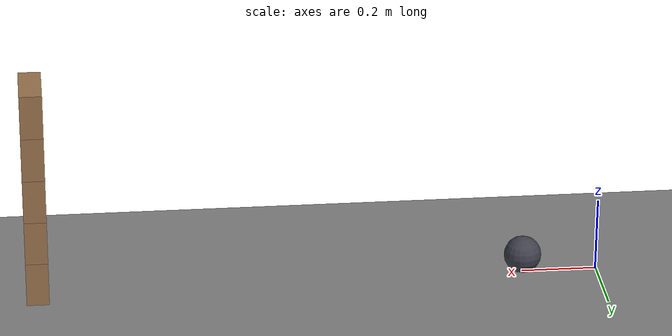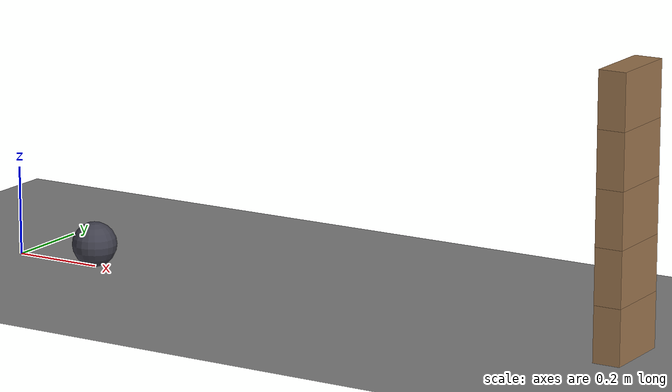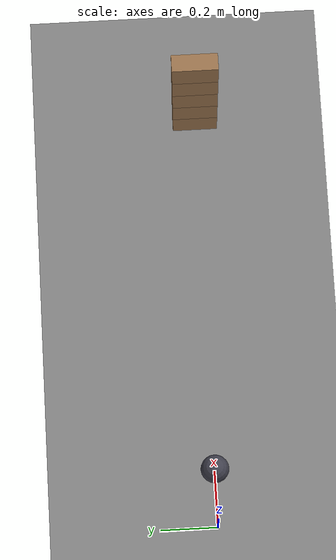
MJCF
<mujoco model="stack_toppled_by_a_push_at_the_bottom">
  <compiler angle="radian"/>
  <option timestep="0.002"/>
  <worldbody>
    <geom name="floor" type="plane" size="6 6 0.1" friction="0.8 0.005 0.0002"/>
    <body name="block1" pos="1.5 0 0.06">
      <freejoint/>
      <geom name="block1" type="box" pos="0 0 0" size="0.03 0.08 0.06" mass="0.4" friction="0.25 0.005 0.0001" rgba="0.6 0.45 0.3 1"/>
    </body>
    <body name="block2" pos="1.5 0 0.18">
      <freejoint/>
      <geom name="block2" type="box" pos="0 0 0" size="0.03 0.08 0.06" mass="0.4" friction="0.25 0.005 0.0001" rgba="0.6 0.45 0.3 1"/>
    </body>
    <body name="block3" pos="1.5 0 0.3">
      <freejoint/>
      <geom name="block3" type="box" pos="0 0 0" size="0.03 0.08 0.06" mass="0.4" friction="0.25 0.005 0.0001" rgba="0.6 0.45 0.3 1"/>
    </body>
    <body name="block4" pos="1.5 0 0.42">
      <freejoint/>
      <geom name="block4" type="box" pos="0 0 0" size="0.03 0.08 0.06" mass="0.4" friction="0.25 0.005 0.0001" rgba="0.6 0.45 0.3 1"/>
    </body>
    <body name="block5" pos="1.5 0 0.54">
      <freejoint/>
      <geom name="block5" type="box" pos="0 0 0" size="0.03 0.08 0.06" mass="0.4" friction="0.25 0.005 0.0001" rgba="0.6 0.45 0.3 1"/>
    </body>
    <body name="pusher" pos="0.2 0 0.05">
      <freejoint/>
      <geom name="pusher" type="sphere" pos="0 0 0" size="0.05" mass="3" condim="6" friction="0.8 0.001 0.0002" solref="0.01 1" rgba="0.25 0.25 0.3 1"/>
    </body>
  </worldbody>
  <keyframe>
    <key name="start" qpos="1.5 0 0.06 1 0 0 0 1.5 0 0.18 1 0 0 0 1.5 0 0.3 1 0 0 0 1.5 0 0.42 1 0 0 0 1.5 0 0.54 1 0 0 0 0.2 0 0.05 1 0 0 0" qvel="0 0 0 0 0 0 0 0 0 0 0 0 0 0 0 0 0 0 0 0 0 0 0 0 0 0 0 0 0 0 1.6 0 0 0 32 0"/>
  </keyframe>
</mujoco>
